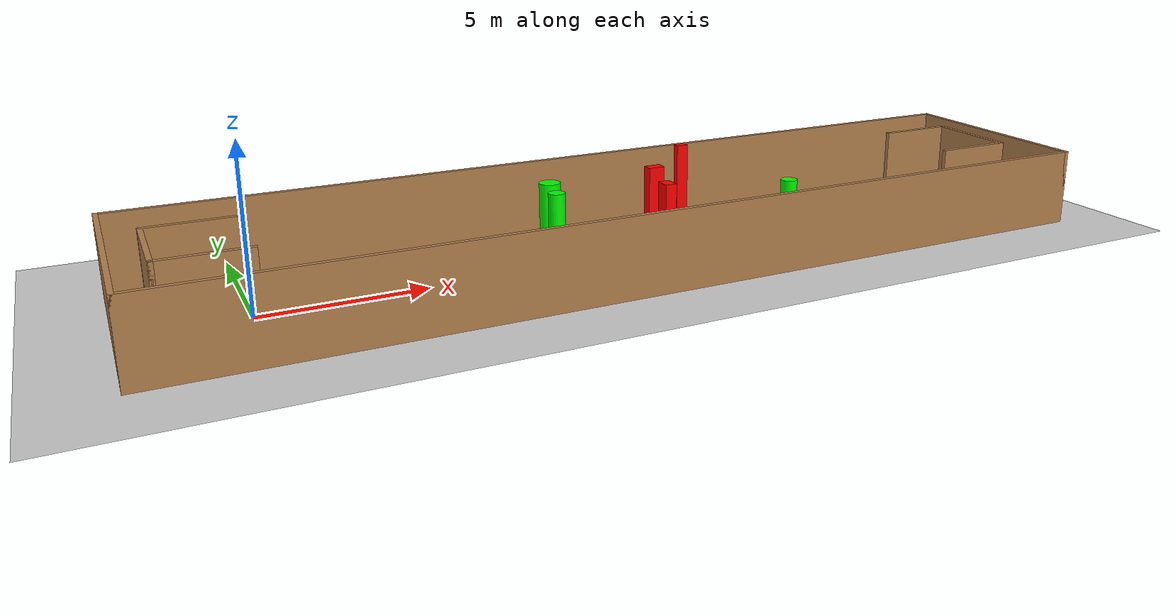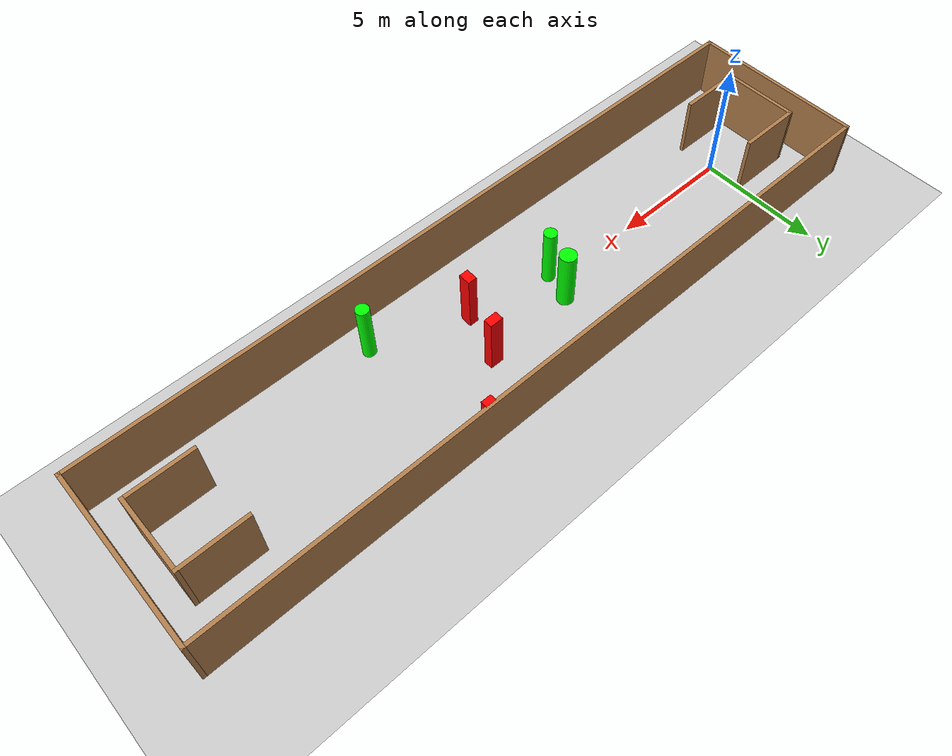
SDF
<sdf version="1.7">
 <world name="default">
  <light name="sun" type="directional">
   <pose>0 0 10 0 -0 0</pose>
   <diffuse>0.8 0.8 0.8 1</diffuse>
   <specular>0.2 0.2 0.2 1</specular>
   <attenuation>
    <range>1000</range>
    <constant>0.9</constant>
    <linear>0.01</linear>
    <quadratic>0.001</quadratic>
   </attenuation>
   <direction>-0.5 0.1 -0.9</direction>
   <spot><inner_angle>0</inner_angle><outer_angle>0</outer_angle><falloff>0</falloff></spot>
  </light>
  <model name="ground_plane">
   <static>1</static>
   <link name="link">
    <collision name="collision">
     <geometry><plane><normal>0 0 1</normal><size>100 100</size></plane></geometry>
     <surface>
      <contact><collide_bitmask>65535</collide_bitmask></contact>
      <friction><ode><mu>100</mu><mu2>50</mu2></ode></friction>
     </surface>
    </collision>
    <visual name="visual">
     <cast_shadows>0</cast_shadows>
     <geometry><plane><normal>0 0 1</normal><size>100 100</size></plane></geometry>
     <material>
      <script><uri>file://media/materials/scripts/gazebo.material</uri><name>Gazebo/Grey</name></script>
     </material>
    </visual>
   </link>
  </model>
  <gravity>0 0 -9.8</gravity>
  <magnetic_field>6e-06 2.3e-05 -4.2e-05</magnetic_field>
  <atmosphere type="adiabatic"/>
  <physics type="ode">
   <max_step_size>0.001</max_step_size>
   <real_time_factor>1</real_time_factor>
   <real_time_update_rate>1000</real_time_update_rate>
  </physics>
  <scene><ambient>0.4 0.4 0.4 1</ambient><background>0.7 0.7 0.7 1</background><shadows>1</shadows></scene>
  <spherical_coordinates>
   <surface_model>EARTH_WGS84</surface_model>
   <latitude_deg>0</latitude_deg>
   <longitude_deg>0</longitude_deg>
   <elevation>0</elevation>
   <heading_deg>0</heading_deg>
  </spherical_coordinates>
  <model name="my_base_walls">
   <link name="Wall_0">
    <collision name="Wall_0_Collision">
     <geometry><box><size>7.15 0.15 2.5</size></box></geometry>
     <pose>0 0 1.25 0 -0 0</pose>
    </collision>
    <visual name="Wall_0_Visual">
     <pose>0 0 1.25 0 -0 0</pose>
     <geometry><box><size>7.15 0.15 2.5</size></box></geometry>
     <material>
      <script><uri>file://media/materials/scripts/gazebo.material</uri><name>Gazebo/Wood</name></script>
      <ambient>1 1 1 1</ambient>
     </material>
     <meta><layer>0</layer></meta>
    </visual>
    <pose>-15 0 0 0 -0 1.5708</pose>
   </link>
   <link name="Wall_10">
    <collision name="Wall_10_Collision">
     <geometry><box><size>2.65 0.15 2.5</size></box></geometry>
     <pose>0 0 1.25 0 -0 0</pose>
    </collision>
    <visual name="Wall_10_Visual">
     <pose>0 0 1.25 0 -0 0</pose>
     <geometry><box><size>2.65 0.15 2.5</size></box></geometry>
     <material>
      <script><uri>file://media/materials/scripts/gazebo.material</uri><name>Gazebo/Wood</name></script>
      <ambient>1 1 1 1</ambient>
     </material>
     <meta><layer>0</layer></meta>
    </visual>
    <pose>-12.75 -1.5 0 0 -0 0</pose>
   </link>
   <link name="Wall_12">
    <collision name="Wall_12_Collision">
     <geometry><box><size>2.65 0.15 2.5</size></box></geometry>
     <pose>0 0 1.25 0 -0 0</pose>
    </collision>
    <visual name="Wall_12_Visual">
     <pose>0 0 1.25 0 -0 0</pose>
     <geometry><box><size>2.65 0.15 2.5</size></box></geometry>
     <material>
      <script><uri>file://media/materials/scripts/gazebo.material</uri><name>Gazebo/Wood</name></script>
      <ambient>1 1 1 1</ambient>
     </material>
     <meta><layer>0</layer></meta>
    </visual>
    <pose>-12.75 1.5 0 0 -0 0</pose>
   </link>
   <link name="Wall_14">
    <collision name="Wall_14_Collision">
     <geometry><box><size>3.15 0.15 2.5</size></box></geometry>
     <pose>0 0 1.25 0 -0 0</pose>
    </collision>
    <visual name="Wall_14_Visual">
     <pose>0 0 1.25 0 -0 0</pose>
     <geometry><box><size>3.15 0.15 2.5</size></box></geometry>
     <material>
      <script><uri>file://media/materials/scripts/gazebo.material</uri><name>Gazebo/Wood</name></script>
      <ambient>1 1 1 1</ambient>
     </material>
     <meta><layer>0</layer></meta>
    </visual>
    <pose>14 0 0 0 -0 -1.5708</pose>
   </link>
   <link name="Wall_15">
    <collision name="Wall_15_Collision">
     <geometry><box><size>2.65 0.15 2.5</size></box></geometry>
     <pose>0 0 1.25 0 -0 0</pose>
    </collision>
    <visual name="Wall_15_Visual">
     <pose>0 0 1.25 0 -0 0</pose>
     <geometry><box><size>2.65 0.15 2.5</size></box></geometry>
     <material>
      <script><uri>file://media/materials/scripts/gazebo.material</uri><name>Gazebo/Wood</name></script>
      <ambient>1 1 1 1</ambient>
     </material>
     <meta><layer>0</layer></meta>
    </visual>
    <pose>12.75 -1.5 0 0 -0 3.14159</pose>
   </link>
   <link name="Wall_17">
    <collision name="Wall_17_Collision">
     <geometry><box><size>2.65 0.15 2.5</size></box></geometry>
     <pose>0 0 1.25 0 -0 0</pose>
    </collision>
    <visual name="Wall_17_Visual">
     <pose>0 0 1.25 0 -0 0</pose>
     <geometry><box><size>2.65 0.15 2.5</size></box></geometry>
     <material>
      <script><uri>file://media/materials/scripts/gazebo.material</uri><name>Gazebo/Wood</name></script>
      <ambient>1 1 1 1</ambient>
     </material>
     <meta><layer>0</layer></meta>
    </visual>
    <pose>12.75 1.5 0 0 -0 3.14159</pose>
   </link>
   <link name="Wall_2">
    <collision name="Wall_2_Collision">
     <geometry><box><size>30.15 0.15 2.5</size></box></geometry>
     <pose>0 0 1.25 0 -0 0</pose>
    </collision>
    <visual name="Wall_2_Visual">
     <pose>0 0 1.25 0 -0 0</pose>
     <geometry><box><size>30.15 0.15 2.5</size></box></geometry>
     <material>
      <script><uri>file://media/materials/scripts/gazebo.material</uri><name>Gazebo/Wood</name></script>
      <ambient>1 1 1 1</ambient>
     </material>
     <meta><layer>0</layer></meta>
    </visual>
    <pose>-0 -3.5 0 0 -0 0</pose>
   </link>
   <link name="Wall_4">
    <collision name="Wall_4_Collision">
     <geometry><box><size>30.15 0.15 2.5</size></box></geometry>
     <pose>0 0 1.25 0 -0 0</pose>
    </collision>
    <visual name="Wall_4_Visual">
     <pose>0 0 1.25 0 -0 0</pose>
     <geometry><box><size>30.15 0.15 2.5</size></box></geometry>
     <material>
      <script><uri>file://media/materials/scripts/gazebo.material</uri><name>Gazebo/Wood</name></script>
      <ambient>1 1 1 1</ambient>
     </material>
     <meta><layer>0</layer></meta>
    </visual>
    <pose>-0 3.5 0 0 -0 0</pose>
   </link>
   <link name="Wall_6">
    <collision name="Wall_6_Collision">
     <geometry><box><size>7.15 0.15 2.5</size></box></geometry>
     <pose>0 0 1.25 0 -0 0</pose>
    </collision>
    <visual name="Wall_6_Visual">
     <pose>0 0 1.25 0 -0 0</pose>
     <geometry><box><size>7.15 0.15 2.5</size></box></geometry>
     <material>
      <script><uri>file://media/materials/scripts/gazebo.material</uri><name>Gazebo/Wood</name></script>
      <ambient>1 1 1 1</ambient>
     </material>
     <meta><layer>0</layer></meta>
    </visual>
    <pose>15 0 0 0 -0 -1.5708</pose>
   </link>
   <link name="Wall_9">
    <collision name="Wall_9_Collision">
     <geometry><box><size>3.15 0.15 2.5</size></box></geometry>
     <pose>0 0 1.25 0 -0 0</pose>
    </collision>
    <visual name="Wall_9_Visual">
     <pose>0 0 1.25 0 -0 0</pose>
     <geometry><box><size>3.15 0.15 2.5</size></box></geometry>
     <material>
      <script><uri>file://media/materials/scripts/gazebo.material</uri><name>Gazebo/Wood</name></script>
      <ambient>1 1 1 1</ambient>
     </material>
     <meta><layer>0</layer></meta>
    </visual>
    <pose>-14 0 0 0 -0 -1.5708</pose>
   </link>
   <static>1</static>
   <pose>11.5 0 0 0 -0 0</pose>
  </model>
  <model name="cylinder1">
   <static>1</static>
   <link name="link">
    <inertial>
     <mass>1</mass>
     <inertia><ixx>0.5</ixx><ixy>0</ixy><ixz>0</ixz><iyy>0.5</iyy><iyz>0</iyz><izz>1</izz></inertia>
    </inertial>
    <collision name="collision">
     <geometry><cylinder><radius>0.33381068536380815</radius><length>2.5</length></cylinder></geometry>
    </collision>
    <visual name="visual">
     <geometry><cylinder><radius>0.33381068536380815</radius><length>2.5</length></cylinder></geometry>
     <material>
      <ambient>0 1 0 1</ambient>
      <diffuse>0 1 0 1</diffuse>
      <specular>0.1 0.1 0.1 1</specular>
      <emissive>0 0 0 0</emissive>
     </material>
    </visual>
   </link>
   <pose>9.173718898473224 0.7777612978411153 1.25 0 0 0</pose>
  </model>
  <model name="cylinder2">
   <static>1</static>
   <link name="link">
    <inertial>
     <mass>1</mass>
     <inertia><ixx>0.5</ixx><ixy>0</ixy><ixz>0</ixz><iyy>0.5</iyy><iyz>0</iyz><izz>1</izz></inertia>
    </inertial>
    <collision name="collision">
     <geometry><cylinder><radius>0.2572389556110883</radius><length>2.5</length></cylinder></geometry>
    </collision>
    <visual name="visual">
     <geometry><cylinder><radius>0.2572389556110883</radius><length>2.5</length></cylinder></geometry>
     <material>
      <ambient>0 1 0 1</ambient>
      <diffuse>0 1 0 1</diffuse>
      <specular>0.1 0.1 0.1 1</specular>
      <emissive>0 0 0 0</emissive>
     </material>
    </visual>
   </link>
   <pose>8.907418134114923 -0.38132630754711583 1.25 0 0 0</pose>
  </model>
  <model name="cylinder3">
   <static>1</static>
   <link name="link">
    <inertial>
     <mass>1</mass>
     <inertia><ixx>0.5</ixx><ixy>0</ixy><ixz>0</ixz><iyy>0.5</iyy><iyz>0</iyz><izz>1</izz></inertia>
    </inertial>
    <collision name="collision">
     <geometry><cylinder><radius>0.2574028128381887</radius><length>2.5</length></cylinder></geometry>
    </collision>
    <visual name="visual">
     <geometry><cylinder><radius>0.2574028128381887</radius><length>2.5</length></cylinder></geometry>
     <material>
      <ambient>0 1 0 1</ambient>
      <diffuse>0 1 0 1</diffuse>
      <specular>0.1 0.1 0.1 1</specular>
      <emissive>0 0 0 0</emissive>
     </material>
    </visual>
   </link>
   <pose>15.985220605990385 -2.236597255830821 1.25 0 0 0</pose>
  </model>
  <model name="box1">
   <static>1</static>
   <link name="link">
    <inertial>
     <mass>1</mass>
     <inertia><ixx>0.083</ixx><ixy>0</ixy><ixz>0</ixz><iyy>0.083</iyy><iyz>0</iyz><izz>0.083</izz></inertia>
    </inertial>
    <collision name="collision">
     <geometry><box><size>0.5370123567515843 0.3544619496973803 2.5</size></box></geometry>
    </collision>
    <visual name="visual">
     <geometry><box><size>0.5370123567515843 0.3544619496973803 2.5</size></box></geometry>
     <material>
      <ambient>1 0 0 1</ambient>
      <diffuse>1 0 0 1</diffuse>
      <specular>0.1 0.1 0.1 1</specular>
      <emissive>0 0 0 0</emissive>
     </material>
    </visual>
    <sensor name="my_contact" type="contact">
     <contact><collision>box_collision</collision><topic>__default_topic__</topic></contact>
    </sensor>
   </link>
   <pose>12.998304981272417 1.0730724013563941 1.25 0 0 0</pose>
  </model>
  <model name="box2">
   <static>1</static>
   <link name="link">
    <inertial>
     <mass>1</mass>
     <inertia><ixx>0.083</ixx><ixy>0</ixy><ixz>0</ixz><iyy>0.083</iyy><iyz>0</iyz><izz>0.083</izz></inertia>
    </inertial>
    <collision name="collision">
     <geometry><box><size>0.4170979917268564 0.2672960288031955 2.5</size></box></geometry>
    </collision>
    <visual name="visual">
     <geometry><box><size>0.4170979917268564 0.2672960288031955 2.5</size></box></geometry>
     <material>
      <ambient>1 0 0 1</ambient>
      <diffuse>1 0 0 1</diffuse>
      <specular>0.1 0.1 0.1 1</specular>
      <emissive>0 0 0 0</emissive>
     </material>
    </visual>
    <sensor name="my_contact" type="contact">
     <contact><collision>box_collision</collision><topic>__default_topic__</topic></contact>
    </sensor>
   </link>
   <pose>15.25615254011236 3.334479957837493 1.25 0 0 0</pose>
  </model>
  <model name="box3">
   <static>1</static>
   <link name="link">
    <inertial>
     <mass>1</mass>
     <inertia><ixx>0.083</ixx><ixy>0</ixy><ixz>0</ixz><iyy>0.083</iyy><iyz>0</iyz><izz>0.083</izz></inertia>
    </inertial>
    <collision name="collision">
     <geometry><box><size>0.3701513274834989 0.4783997404075522 2.5</size></box></geometry>
    </collision>
    <visual name="visual">
     <geometry><box><size>0.3701513274834989 0.4783997404075522 2.5</size></box></geometry>
     <material>
      <ambient>1 0 0 1</ambient>
      <diffuse>1 0 0 1</diffuse>
      <specular>0.1 0.1 0.1 1</specular>
      <emissive>0 0 0 0</emissive>
     </material>
    </visual>
    <sensor name="my_contact" type="contact">
     <contact><collision>box_collision</collision><topic>__default_topic__</topic></contact>
    </sensor>
   </link>
   <pose>12.41576382970811 -0.8796747451303153 1.25 0 0 0</pose>
  </model>
 </world>
</sdf>
